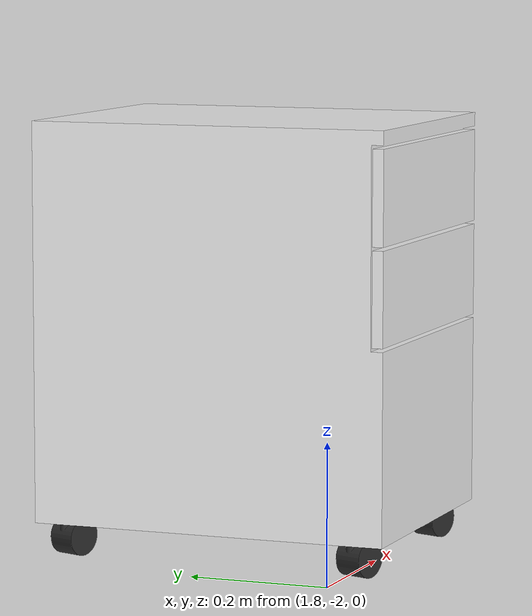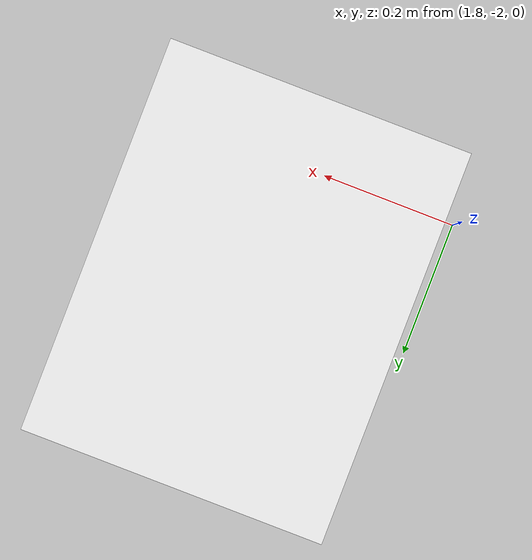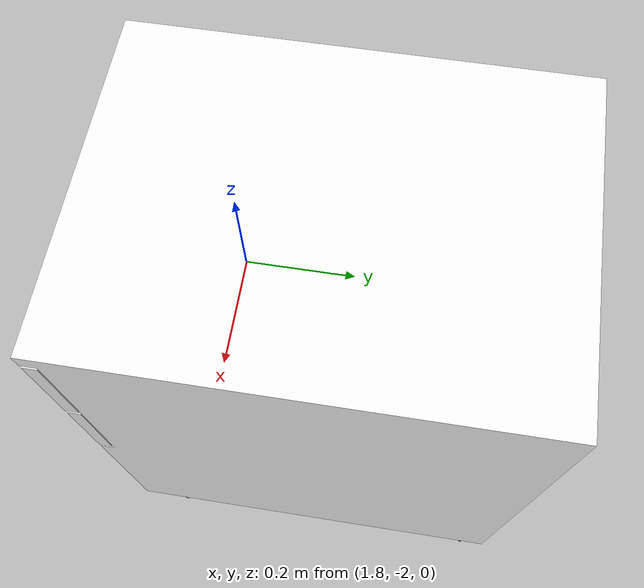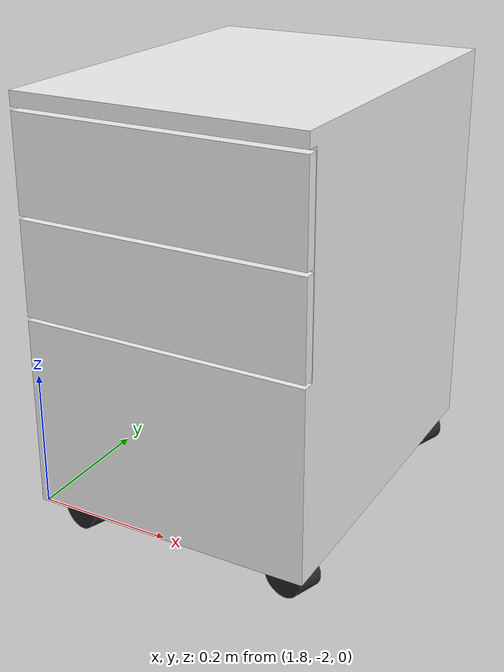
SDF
<?xml version="1.0"?>

<sdf version="1.4">
    <model name="drawer">
        <static>true</static>
        <link name="drawer_link">

            <visual name="drawer_mesh">
                <geometry>
                    <mesh>
                        <uri>model://drawer/meshes/model.dae</uri>
                    </mesh>
                </geometry>
            </visual>

            <collision name="drawer_collison">
                <pose>2.053917 -1.803429 0.317839 0 0 0</pose>
                <geometry>
                    <box>
                        <size>0.429536 0.536622 0.612838</size>
                    </box>
                </geometry>
            </collision>

        </link>
    </model>
</sdf>
